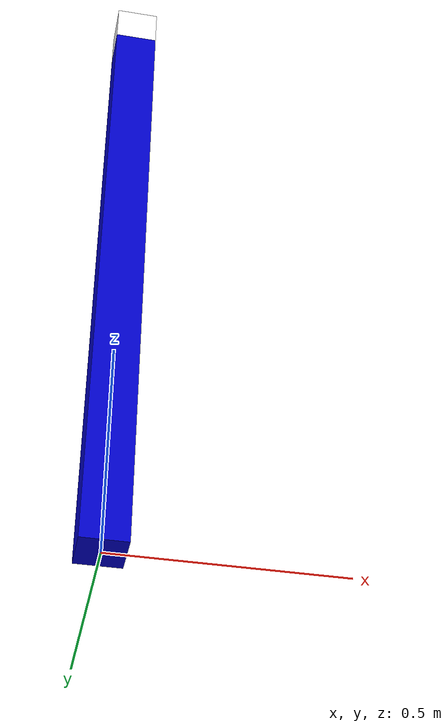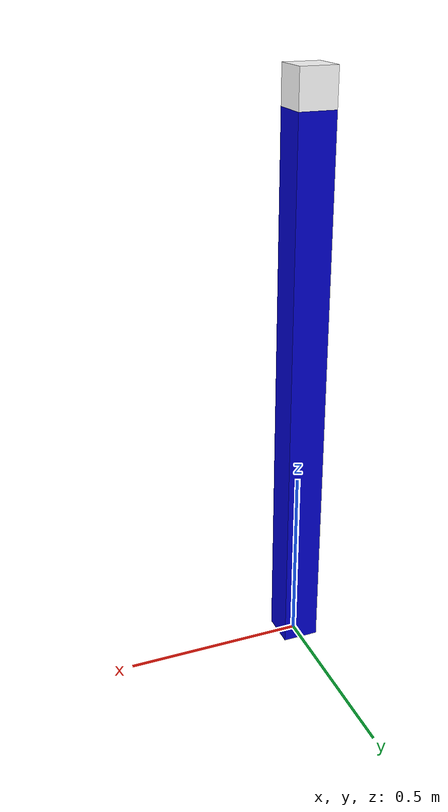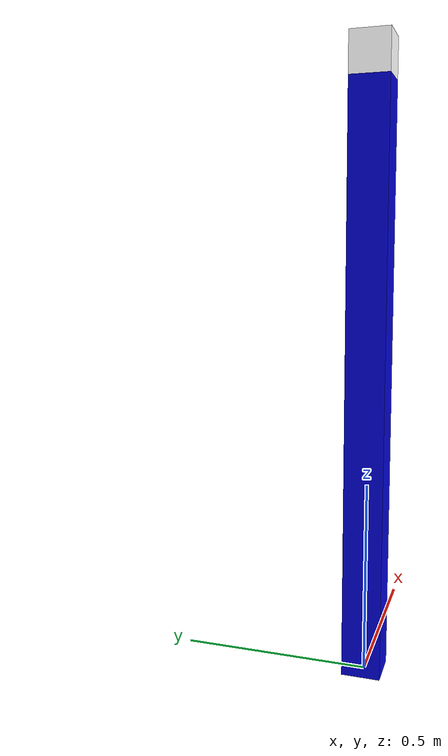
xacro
<?xml version="1.0"?>
<robot name="basic_stick" xmlns:xacro="http://www.ros.org/wiki/xacro">
  <xacro:property name="PI" value="3.14159"/>
  <xacro:property name="mass1" value="10" />
  <xacro:property name="mass2" value="1" />
  <xacro:property name="width1" value="0.1" /> <!--link_1 radius-->
  <xacro:property name="width2" value="0.1" /> <!--link_2 radius-->
  <xacro:property name="length0" value="0.1" /> <!--link_1 length-->
  <xacro:property name="length1" value="1.5" /> <!--link_2 length-->
  <xacro:property name="length2" value="0.1" /> <!--link_3 length-->
  <xacro:property name="mass_camera" value="0.2" />

  <!--Links-->
  <link name="world"/>

  <link name="link_1">
    <visual>
      <origin xyz="0 0 0" rpy="0 0 0"/>
      <geometry>
        <box size="${width1} ${width1} ${length1}"/>
      </geometry>
      <material name="blue">
        <color rgba="0.0 0.0 0.8 1.0"/>
      </material>
    </visual>
    <collision>
      <origin xyz="0 0 0" rpy="0 0 0"/>
      <geometry>
        <box size="${width1} ${width1} ${length1}"/>
      </geometry>
    </collision>
    <inertial>
      <origin xyz="0 0 0" rpy="0 0 0"/>
      <mass value="${mass1}"/>
      <inertia
        ixx="${mass1 / 12.0 * (width1*width1 + length1*length1)}" ixy="0.0" ixz="0.0"
        iyy="${mass1 / 12.0 * (length1*length1 + width1*width1)}" iyz="0.0"
        izz="${mass1 / 12.0 * (width1*width1 + width1*width1)}"/>
    </inertial>
  </link>

  <link name="link_2">
    <visual>
      <origin xyz="0 0 0" rpy="0 0 0"/>
      <geometry>
        <box size="${width2} ${width2} ${length2}"/>
      </geometry>
      <material name="white">
        <color rgba="1.0 1.0 1.0 1.0"/>
      </material>
    </visual>
    <collision>
      <origin xyz="0 0 0" rpy="0 0 0"/>
      <geometry>
        <box size="${width2} ${width2} ${length2}"/>
      </geometry>
    </collision>
    <inertial>
      <origin xyz="0 0 0" rpy="0 0 0"/>
      <mass value="${mass2}"/>
      <inertia
        ixx="${mass2 / 12.0 * (width2*width2 + length2*length2)}" ixy="0.0" ixz="0.0"
        iyy="${mass2 / 12.0 * (length2*length2 + width2*width2)}" iyz="0.0"
        izz="${mass2 / 12.0 * (width2*width2 + width2*width2)}"/>
    </inertial>
  </link>

  <!--Joints-->
  <joint name="fixed_base_joint" type="fixed">
    <parent link="world"/>
    <child link="link_1"/>
    <origin xyz="0 0 ${length1/2}" rpy="0 0 0"/>
  </joint>

  <joint name="pan_joint" type="fixed">
    <parent link="link_1"/>
    <child link="link_2"/>
    <origin xyz="0 0 ${length1/2+length2/2}" rpy="0 0 -${pi/2}"/>
  </joint>

</robot>
